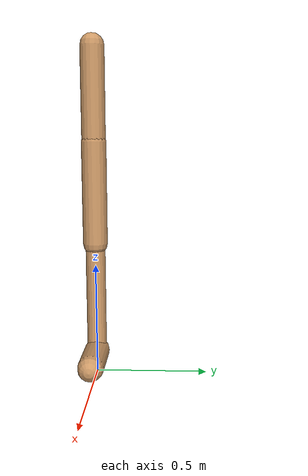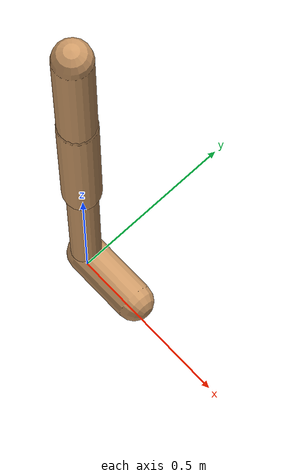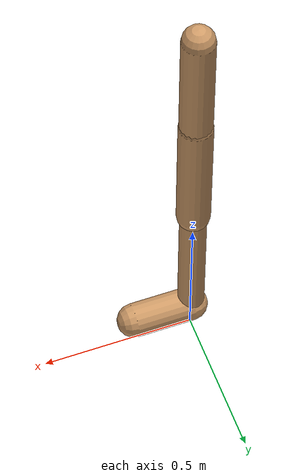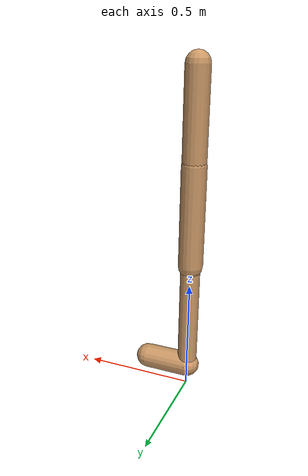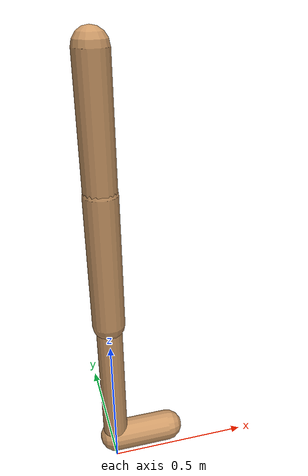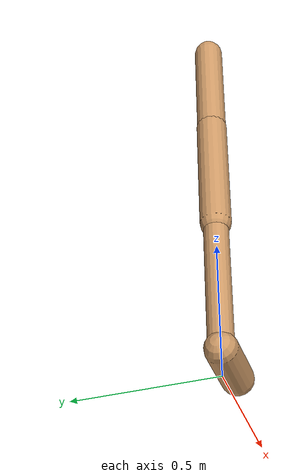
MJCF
<mujoco model="walker2d">
  <compiler angle="degree" coordinate="global" inertiafromgeom="true" />
  <default>
    <joint armature="0.01" damping=".1" limited="true" />
    <geom conaffinity="0" condim="3" contype="1" density="1000" friction="0.8 .1 .1" rgba="0.8 0.6 .4 1" />
  </default>
  <option integrator="RK4" timestep="0.002" />
  <worldbody>

    <body name="torso" pos="0 0 -0.001641119797927679">
      <joint armature="0" axis="1 0 0" damping="0" limited="false" name="ignorex" pos="0 0 0" stiffness="0" type="slide" />
      <joint armature="0" axis="0 0 1" damping="0" limited="false" name="ignorez" pos="0 0 0" ref="1.25" stiffness="0" type="slide" />
      <joint armature="0" axis="0 1 0" damping="0" limited="false" name="ignorey" pos="0 0 0" stiffness="0" type="hinge" />
      <geom fromto="0 0 1.45 0 0 1.05" name="torso_geom" size="0.05228509134436137" type="capsule" />
      <body name="thigh">
        <joint axis="0 -1 0" name="thigh_joint" pos="0 0 1.05" range="-150 0" type="hinge" />
        <geom fromto="0.0 0.0 1.05 0.0 0.0 0.6007773725358605" name="thigh_geom" size="0.0544904202098806" type="capsule" />
        <body name="leg" pos="0.0 0.0 0.000777372535860521">
          <joint axis="0 -1 0" name="leg_joint" pos="0 0 0.6" range="-150 0" type="hinge" />
          <geom fromto="0.0 0.0 0.6 0.0 0.0 0.1008637472620672" name="leg_geom" size="0.04359233616790448" type="capsule" />
          <body name="foot" pos="0.0 0.0 0.0008637472620671993">
            <joint axis="0 -1 0" name="foot_joint" pos="0 0 0.1" range="-45 45" type="hinge" />
            <geom fromto="0.0 0.0 0.1 0.19612392500334896 0.0 0.1" name="foot_geom" size="0.05604173094493678" type="capsule" />
          </body>
        </body>
      </body>

      <body name="thigh_left">
        <joint axis="0 -1 0" name="thigh_left_joint" pos="0 0 1.05" range="-150 0" type="hinge" />
        <geom fromto="0.0 0.0 1.05 0.0 0.0 0.6007773725358605" name="thigh_left_geom" rgba=".7 .3 .6 1" size="0.0544904202098806" type="capsule" />
        <body name="leg_left" pos="0.0 0.0 0.000777372535860521">
          <joint axis="0 -1 0" name="leg_left_joint" pos="0 0 0.6" range="-150 0" type="hinge" />
          <geom fromto="0.0 0.0 0.6 0.0 0.0 0.1008637472620672" name="leg_left_geom" rgba=".7 .3 .6 1" size="0.04359233616790448" type="capsule" />
          <body name="foot_left" pos="0.0 0.0 0.0008637472620671993">
            <joint axis="0 -1 0" name="foot_left_joint" pos="0 0 0.1" range="-45 45" type="hinge" />
            <geom fromto="0.0 0.0 0.1 0.19612392500334896 0.0 0.1" name="foot_left_geom" rgba=".7 .3 .6 1" size="0.05604173094493678" type="capsule" />
          </body>
        </body>
      </body>
    </body>
  </worldbody>
  <actuator>

    <motor ctrllimited="true" ctrlrange="-1.0 1.0" gear="100" joint="thigh_joint" />
    <motor ctrllimited="true" ctrlrange="-1.0 1.0" gear="100" joint="leg_joint" />
    <motor ctrllimited="true" ctrlrange="-1.0 1.0" gear="100" joint="foot_joint" />
    <motor ctrllimited="true" ctrlrange="-1.0 1.0" gear="100" joint="thigh_left_joint" />
    <motor ctrllimited="true" ctrlrange="-1.0 1.0" gear="100" joint="leg_left_joint" />
    <motor ctrllimited="true" ctrlrange="-1.0 1.0" gear="100" joint="foot_left_joint" />

  </actuator>
</mujoco>
